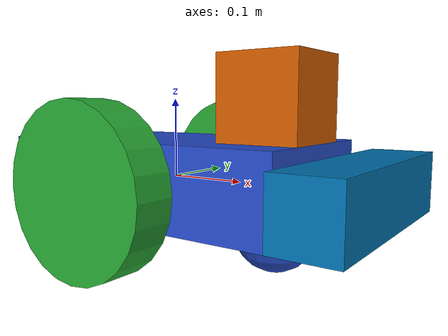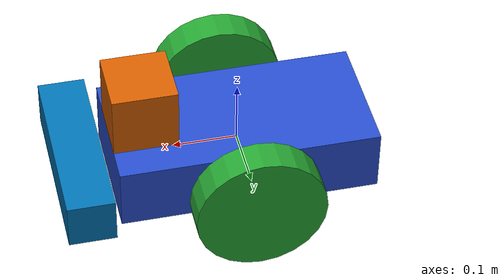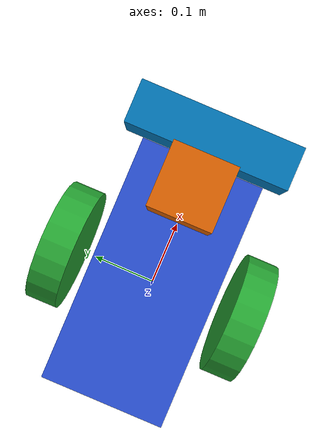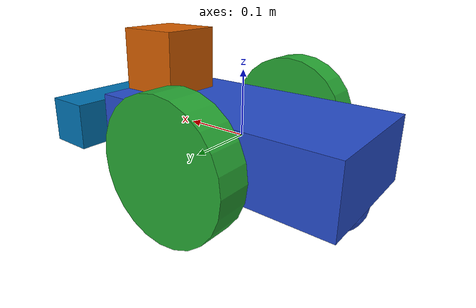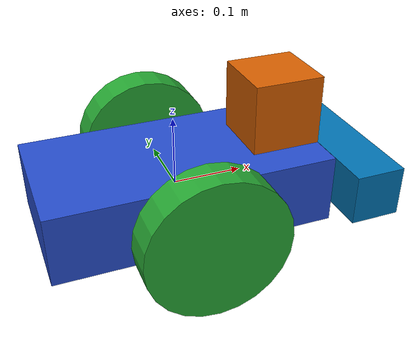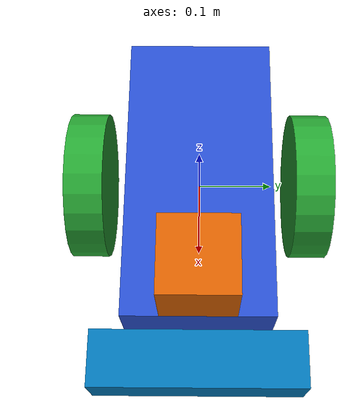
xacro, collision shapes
<?xml version='1.0'?>

<robot name="udacity_bot" xmlns:xacro="http://www.ros.org/wiki/xacro">

  <xacro:include filename="$(find udacity_bot)/urdf/udacity_bot.gazebo" />

  <!-- footprint LINK -->
  <link name="robot_footprint"></link>

  <!-- footprint + chassis JOINT -->
  <joint name="robot_footprint_joint" type="fixed">
    <origin xyz="0 0 0" rpy="0 0 0" />
    <parent link="robot_footprint"/>
    <child link="chassis" />
  </joint>

  <!-- chassis LINK -->
  <link name='chassis'>
    <pose>0 0 0.1 0 0 0</pose>

    <inertial>
      <mass value="15.0"/>
      <origin xyz="0.0 0 0" rpy=" 0 0 0"/>
      <inertia
          ixx="0.1" ixy="0" ixz="0"
          iyy="0.1" iyz="0"
          izz="0.1"
      />
    </inertial>

    <collision name='collision'>
      <origin xyz="0 0 0" rpy=" 0 0 0"/>
      <geometry>
        <box size=".4 .2 .1"/>
      </geometry>
    </collision>

    <visual name='chassis_visual'>
      <origin xyz="0 0 0" rpy=" 0 0 0"/>
      <geometry>
        <box size=".4 .2 .1"/>
      </geometry>
    </visual>

    <collision name='back_caster_collision'>
      <origin xyz="-0.15 0 -0.05" rpy=" 0 0 0"/>
      <geometry>
        <sphere radius="0.0499"/>
      </geometry>
      <surface>
        <friction>
          <ode>
            <mu>0</mu>
            <mu2>0</mu2>
            <slip1>1.0</slip1>
            <slip2>1.0</slip2>
          </ode>
        </friction>
      </surface>
    </collision>

    <visual name='back_caster_visual'>
      <origin xyz="-0.15 0 -0.05" rpy=" 0 0 0"/>
      <geometry>
        <sphere radius="0.0499"/>
      </geometry>
    </visual>

    <collision name='front_caster_collision'>
      <origin xyz="0.15 0 -0.05" rpy=" 0 0 0"/>
      <geometry>
        <sphere radius="0.0499"/>
      </geometry>
      <surface>
        <friction>
          <ode>
            <mu>0</mu>
            <mu2>0</mu2>
            <slip1>1.0</slip1>
            <slip2>1.0</slip2>
          </ode>
        </friction>
      </surface>
    </collision>

    <visual name='front_caster_visual'>
      <origin xyz="0.15 0 -0.05" rpy=" 0 0 0"/>
      <geometry>
        <sphere radius="0.0499"/>
      </geometry>
    </visual>

  </link>

  <!-- right wheel LINK -->
  <link name='right_wheel'>
    <inertial>
      <mass value="5.0"/>
      <origin xyz="0 0 0" rpy=" 0 1.5707 -1.5707"/>
      <inertia
        ixx="0.1" ixy="0" ixz="0"
        iyy="0.1" iyz="0"
        izz="0.1"
      />
    </inertial>

    <collision>
      <origin xyz="0 0 0" rpy=" 0 1.5707 -1.5707"/>
      <geometry>
        <cylinder length="0.05" radius="0.1"/>
      </geometry>
    </collision>

    <visual>
      <origin xyz="0 0 0" rpy=" 0 1.5707 -1.5707"/>
      <geometry>
        <cylinder length="0.05" radius="0.1"/>
      </geometry>
    </visual>
  </link>

  <!-- right wheel + chassis JOINT -->
  <joint type="continuous" name="right_wheel_hinge">
    <origin xyz="0 -0.15 0" rpy="0 0 0"/>
    <child link="right_wheel"/>
    <parent link="chassis"/>
    <axis xyz="0 1 0" rpy="0 0 0"/>
    <limit effort="10000" velocity="1000"/>
    <joint_properties damping="1.0" friction="1.0"/>
  </joint>

  <!-- left wheel - LINK -->
  <link name='left_wheel'>
    <inertial>
      <mass value="5.0"/>
      <origin xyz="0 0 0" rpy=" 0 1.5707 1.5707"/>
      <inertia
      ixx="0.1" ixy="0" ixz="0"
      iyy="0.1" iyz="0"
      izz="0.1"
      />
    </inertial>

    <collision>
      <origin xyz="0 0 0" rpy=" 0 1.5707 1.5707"/>
      <geometry>
        <cylinder length="0.05" radius="0.1"/>
      </geometry>
    </collision>

    <visual>
      <origin xyz="0 0 0" rpy=" 0 1.5707 1.5707"/>
      <geometry>
        <cylinder length="0.05" radius="0.1"/>
      </geometry>
    </visual>
  </link>

  <!-- left wheel + chassis - JOINT -->
  <joint type="continuous" name="left_wheel_hinge">
    <origin xyz="0 0.15 0" rpy="0 0 0"/>
    <child link="left_wheel"/>
    <parent link="chassis"/>
    <axis xyz="0 1 0" rpy="0 0 0"/>
    <limit effort="10000" velocity="1000"/>
    <joint_properties damping="1.0" friction="1.0"/>
  </joint>

  <!-- kinect - LINK -->
  <link name='kinect'>
    <inertial>
      <mass value="0.1"/>
      <origin xyz="0 0 0" rpy="0 0 0"/>
      <inertia
        ixx="1e-6" ixy="0" ixz="0"
        iyy="1e-6" iyz="0"
        izz="1e-6"
      />
    </inertial>

    <collision name='kinect_collision'>
      <origin xyz="0 0 0" rpy="0 0 0"/>
      <geometry>
        <box size="0.07271 0.27794 0.073" />
      </geometry>
    </collision>

    <visual name='kinect_visual'>
      <origin xyz="0 0 0" rpy="0 0 1.5708"/>
      <geometry>
        <mesh filename="package://udacity_bot/meshes/kinect.dae"/>
      </geometry>
    </visual>
  </link>

  <!-- kinect + chassis JOINT -->
  <joint type="fixed" name="kinect_joint">
    <origin xyz="0.25 0 0" rpy="0 0 0"/>
    <child link="kinect"/>
    <parent link="chassis"/>
  </joint>

  <!-- laser rangefinder - LINK -->
  <link name='hokuyo'>
    <inertial>
      <mass value="0.1"/>
      <origin xyz="0 0 0" rpy="0 0 0"/>
      <inertia
        ixx="1e-6" ixy="0" ixz="0"
        iyy="1e-6" iyz="0"
        izz="1e-6"
      />
    </inertial>

    <collision name='hokuyo_collision'>
      <origin xyz="0 0 0" rpy=" 0 0 0"/>
      <geometry>
        <box size="0.1 0.1 0.1" />
      </geometry>
    </collision>

    <visual name='hokuyo_visual'>
      <origin xyz="0 0 0" rpy="0 0 0"/>
      <geometry>
        <mesh filename="package://udacity_bot/meshes/hokuyo.dae"/>
      </geometry>
    </visual>
  </link>

  <!-- laser rangefinder + chassis JOINT -->
  <joint type="fixed" name="hokuyo_joint">
    <origin xyz="0.15 0 0.1" rpy="0 0 0"/>
    <child link="hokuyo"/>
    <parent link="chassis"/>
  </joint>

</robot>
